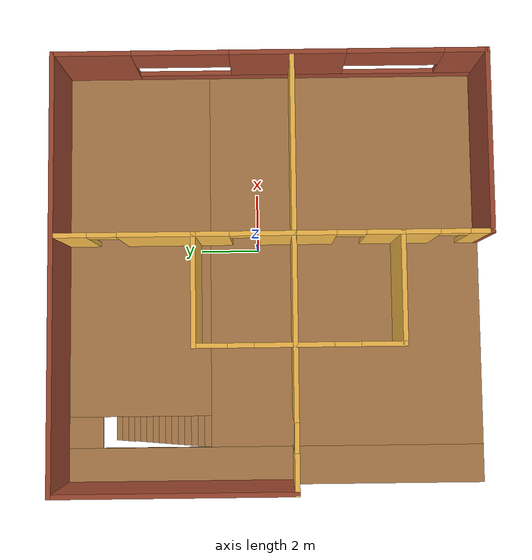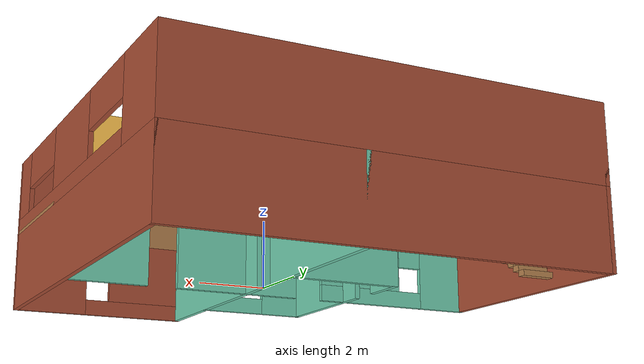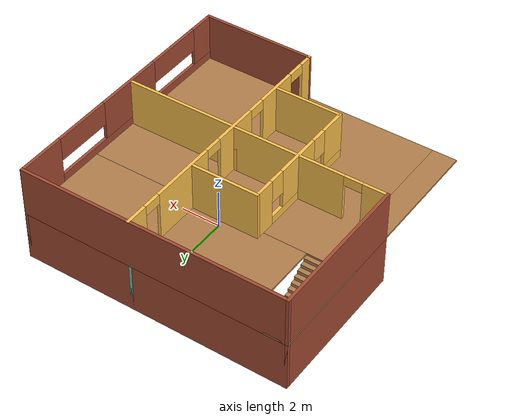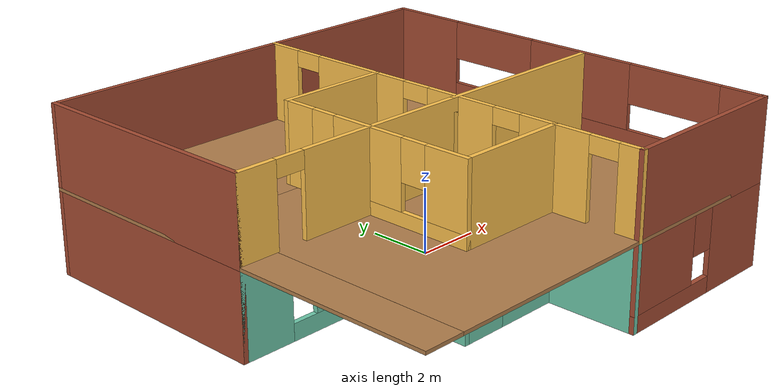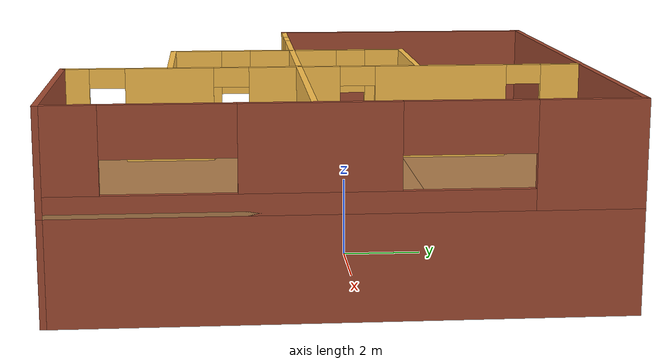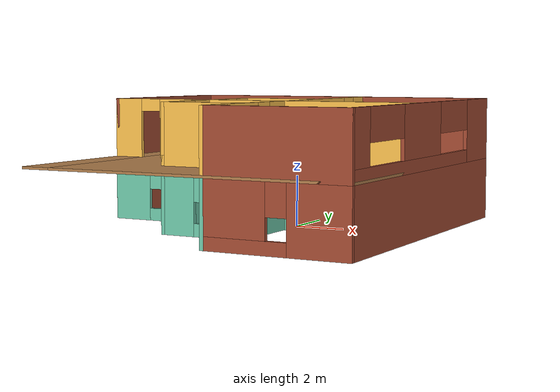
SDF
<?xml version='1.0'?>
<sdf version='1.6'>
  <model name='myhouse'>
    <pose frame=''>-1.06744 -0.491772 0 0 -0 0</pose>
    <link name='Floor_0'>
      <pose frame=''>0 0 2.5 0 -0 0</pose>
      <visual name='Floor_0_Visual_0'>
        <pose frame=''>-6.14496 0 0.05 0 -0 0</pose>
        <geometry>
          <box>
            <size>1.21009 13.5 0.1</size>
          </box>
        </geometry>
        <material>
          <script>
            <uri>file://media/materials/scripts/gazebo.material</uri>
            <name>Gazebo/Wood</name>
          </script>
          <ambient>1 0.764706 0.305882 1</ambient>
        </material>
        <meta>
          <layer>1</layer>
        </meta>
      </visual>
      <collision name='Floor_0_Collision_0'>
        <geometry>
          <box>
            <size>1.21009 13.5 0.1</size>
          </box>
        </geometry>
        <pose frame=''>-6.14496 0 0.05 0 -0 0</pose>
      </collision>
      <visual name='Floor_0_Visual_1'>
        <pose frame=''>0.605042 -2.36825 0.05 0 -0 0</pose>
        <geometry>
          <box>
            <size>12.2899 8.76351 0.1</size>
          </box>
        </geometry>
        <material>
          <script>
            <uri>file://media/materials/scripts/gazebo.material</uri>
            <name>Gazebo/Wood</name>
          </script>
          <ambient>1 0.764706 0.305882 1</ambient>
        </material>
        <meta>
          <layer>1</layer>
        </meta>
      </visual>
      <collision name='Floor_0_Collision_1'>
        <geometry>
          <box>
            <size>12.2899 8.76351 0.1</size>
          </box>
        </geometry>
        <pose frame=''>0.605042 -2.36825 0.05 0 -0 0</pose>
      </collision>
      <visual name='Floor_0_Visual_2'>
        <pose frame=''>1.10504 4.38175 0.05 0 -0 0</pose>
        <geometry>
          <box>
            <size>11.2899 4.73649 0.1</size>
          </box>
        </geometry>
        <material>
          <script>
            <uri>file://media/materials/scripts/gazebo.material</uri>
            <name>Gazebo/Wood</name>
          </script>
          <ambient>1 0.764706 0.305882 1</ambient>
        </material>
        <meta>
          <layer>1</layer>
        </meta>
      </visual>
      <collision name='Floor_0_Collision_2'>
        <geometry>
          <box>
            <size>11.2899 4.73649 0.1</size>
          </box>
        </geometry>
        <pose frame=''>1.10504 4.38175 0.05 0 -0 0</pose>
      </collision>
      <visual name='Floor_0_Visual_3'>
        <pose frame=''>-5.03991 6.13175 0.05 0 -0 0</pose>
        <geometry>
          <box>
            <size>1 1.23649 0.1</size>
          </box>
        </geometry>
        <material>
          <script>
            <uri>file://media/materials/scripts/gazebo.material</uri>
            <name>Gazebo/Wood</name>
          </script>
          <ambient>1 0.764706 0.305882 1</ambient>
        </material>
        <meta>
          <layer>1</layer>
        </meta>
      </visual>
      <collision name='Floor_0_Collision_3'>
        <geometry>
          <box>
            <size>1 1.23649 0.1</size>
          </box>
        </geometry>
        <pose frame=''>-5.03991 6.13175 0.05 0 -0 0</pose>
      </collision>
    </link>
    <link name='Stairs_0'>
      <visual name='Stairs_0_Visual_0'>
        <pose frame=''>-5.03992 5.39684 0.083333 0 -0 0</pose>
        <geometry>
          <box>
            <size>1 0.233333 0.166667</size>
          </box>
        </geometry>
        <material>
          <script>
            <uri>file://media/materials/scripts/gazebo.material</uri>
            <name>Gazebo/Wood</name>
          </script>
          <ambient>1 1 1 1</ambient>
        </material>
        <meta>
          <layer>0</layer>
        </meta>
      </visual>
      <collision name='Stairs_0_Collision_0'>
        <geometry>
          <box>
            <size>1 0.233333 0.166667</size>
          </box>
        </geometry>
        <pose frame=''>-5.03992 5.39684 0.083333 0 -0 0</pose>
      </collision>
      <visual name='Stairs_0_Visual_1'>
        <pose frame=''>-5.03992 5.16351 0.25 0 -0 0</pose>
        <geometry>
          <box>
            <size>1 0.233333 0.166667</size>
          </box>
        </geometry>
        <material>
          <script>
            <uri>file://media/materials/scripts/gazebo.material</uri>
            <name>Gazebo/Wood</name>
          </script>
          <ambient>1 1 1 1</ambient>
        </material>
        <meta>
          <layer>0</layer>
        </meta>
      </visual>
      <collision name='Stairs_0_Collision_1'>
        <geometry>
          <box>
            <size>1 0.233333 0.166667</size>
          </box>
        </geometry>
        <pose frame=''>-5.03992 5.16351 0.25 0 -0 0</pose>
      </collision>
      <visual name='Stairs_0_Visual_2'>
        <pose frame=''>-5.03992 4.93017 0.416667 0 -0 0</pose>
        <geometry>
          <box>
            <size>1 0.233333 0.166667</size>
          </box>
        </geometry>
        <material>
          <script>
            <uri>file://media/materials/scripts/gazebo.material</uri>
            <name>Gazebo/Wood</name>
          </script>
          <ambient>1 1 1 1</ambient>
        </material>
        <meta>
          <layer>0</layer>
        </meta>
      </visual>
      <collision name='Stairs_0_Collision_2'>
        <geometry>
          <box>
            <size>1 0.233333 0.166667</size>
          </box>
        </geometry>
        <pose frame=''>-5.03992 4.93017 0.416667 0 -0 0</pose>
      </collision>
      <visual name='Stairs_0_Visual_3'>
        <pose frame=''>-5.03992 4.69684 0.583333 0 -0 0</pose>
        <geometry>
          <box>
            <size>1 0.233333 0.166667</size>
          </box>
        </geometry>
        <material>
          <script>
            <uri>file://media/materials/scripts/gazebo.material</uri>
            <name>Gazebo/Wood</name>
          </script>
          <ambient>1 1 1 1</ambient>
        </material>
        <meta>
          <layer>0</layer>
        </meta>
      </visual>
      <collision name='Stairs_0_Collision_3'>
        <geometry>
          <box>
            <size>1 0.233333 0.166667</size>
          </box>
        </geometry>
        <pose frame=''>-5.03992 4.69684 0.583333 0 -0 0</pose>
      </collision>
      <visual name='Stairs_0_Visual_4'>
        <pose frame=''>-5.03992 4.46351 0.75 0 -0 0</pose>
        <geometry>
          <box>
            <size>1 0.233333 0.166667</size>
          </box>
        </geometry>
        <material>
          <script>
            <uri>file://media/materials/scripts/gazebo.material</uri>
            <name>Gazebo/Wood</name>
          </script>
          <ambient>1 1 1 1</ambient>
        </material>
        <meta>
          <layer>0</layer>
        </meta>
      </visual>
      <collision name='Stairs_0_Collision_4'>
        <geometry>
          <box>
            <size>1 0.233333 0.166667</size>
          </box>
        </geometry>
        <pose frame=''>-5.03992 4.46351 0.75 0 -0 0</pose>
      </collision>
      <visual name='Stairs_0_Visual_5'>
        <pose frame=''>-5.03992 4.23017 0.916667 0 -0 0</pose>
        <geometry>
          <box>
            <size>1 0.233333 0.166667</size>
          </box>
        </geometry>
        <material>
          <script>
            <uri>file://media/materials/scripts/gazebo.material</uri>
            <name>Gazebo/Wood</name>
          </script>
          <ambient>1 1 1 1</ambient>
        </material>
        <meta>
          <layer>0</layer>
        </meta>
      </visual>
      <collision name='Stairs_0_Collision_5'>
        <geometry>
          <box>
            <size>1 0.233333 0.166667</size>
          </box>
        </geometry>
        <pose frame=''>-5.03992 4.23017 0.916667 0 -0 0</pose>
      </collision>
      <visual name='Stairs_0_Visual_6'>
        <pose frame=''>-5.03992 3.99684 1.08333 0 -0 0</pose>
        <geometry>
          <box>
            <size>1 0.233333 0.166667</size>
          </box>
        </geometry>
        <material>
          <script>
            <uri>file://media/materials/scripts/gazebo.material</uri>
            <name>Gazebo/Wood</name>
          </script>
          <ambient>1 1 1 1</ambient>
        </material>
        <meta>
          <layer>0</layer>
        </meta>
      </visual>
      <collision name='Stairs_0_Collision_6'>
        <geometry>
          <box>
            <size>1 0.233333 0.166667</size>
          </box>
        </geometry>
        <pose frame=''>-5.03992 3.99684 1.08333 0 -0 0</pose>
      </collision>
      <visual name='Stairs_0_Visual_7'>
        <pose frame=''>-5.03992 3.76351 1.25 0 -0 0</pose>
        <geometry>
          <box>
            <size>1 0.233333 0.166667</size>
          </box>
        </geometry>
        <material>
          <script>
            <uri>file://media/materials/scripts/gazebo.material</uri>
            <name>Gazebo/Wood</name>
          </script>
          <ambient>1 1 1 1</ambient>
        </material>
        <meta>
          <layer>0</layer>
        </meta>
      </visual>
      <collision name='Stairs_0_Collision_7'>
        <geometry>
          <box>
            <size>1 0.233333 0.166667</size>
          </box>
        </geometry>
        <pose frame=''>-5.03992 3.76351 1.25 0 -0 0</pose>
      </collision>
      <visual name='Stairs_0_Visual_8'>
        <pose frame=''>-5.03992 3.53017 1.41667 0 -0 0</pose>
        <geometry>
          <box>
            <size>1 0.233333 0.166667</size>
          </box>
        </geometry>
        <material>
          <script>
            <uri>file://media/materials/scripts/gazebo.material</uri>
            <name>Gazebo/Wood</name>
          </script>
          <ambient>1 1 1 1</ambient>
        </material>
        <meta>
          <layer>0</layer>
        </meta>
      </visual>
      <collision name='Stairs_0_Collision_8'>
        <geometry>
          <box>
            <size>1 0.233333 0.166667</size>
          </box>
        </geometry>
        <pose frame=''>-5.03992 3.53017 1.41667 0 -0 0</pose>
      </collision>
      <visual name='Stairs_0_Visual_9'>
        <pose frame=''>-5.03992 3.29684 1.58333 0 -0 0</pose>
        <geometry>
          <box>
            <size>1 0.233333 0.166667</size>
          </box>
        </geometry>
        <material>
          <script>
            <uri>file://media/materials/scripts/gazebo.material</uri>
            <name>Gazebo/Wood</name>
          </script>
          <ambient>1 1 1 1</ambient>
        </material>
        <meta>
          <layer>0</layer>
        </meta>
      </visual>
      <collision name='Stairs_0_Collision_9'>
        <geometry>
          <box>
            <size>1 0.233333 0.166667</size>
          </box>
        </geometry>
        <pose frame=''>-5.03992 3.29684 1.58333 0 -0 0</pose>
      </collision>
      <visual name='Stairs_0_Visual_10'>
        <pose frame=''>-5.03992 3.06351 1.75 0 -0 0</pose>
        <geometry>
          <box>
            <size>1 0.233333 0.166667</size>
          </box>
        </geometry>
        <material>
          <script>
            <uri>file://media/materials/scripts/gazebo.material</uri>
            <name>Gazebo/Wood</name>
          </script>
          <ambient>1 1 1 1</ambient>
        </material>
        <meta>
          <layer>0</layer>
        </meta>
      </visual>
      <collision name='Stairs_0_Collision_10'>
        <geometry>
          <box>
            <size>1 0.233333 0.166667</size>
          </box>
        </geometry>
        <pose frame=''>-5.03992 3.06351 1.75 0 -0 0</pose>
      </collision>
      <visual name='Stairs_0_Visual_11'>
        <pose frame=''>-5.03992 2.83017 1.91667 0 -0 0</pose>
        <geometry>
          <box>
            <size>1 0.233333 0.166667</size>
          </box>
        </geometry>
        <material>
          <script>
            <uri>file://media/materials/scripts/gazebo.material</uri>
            <name>Gazebo/Wood</name>
          </script>
          <ambient>1 1 1 1</ambient>
        </material>
        <meta>
          <layer>0</layer>
        </meta>
      </visual>
      <collision name='Stairs_0_Collision_11'>
        <geometry>
          <box>
            <size>1 0.233333 0.166667</size>
          </box>
        </geometry>
        <pose frame=''>-5.03992 2.83017 1.91667 0 -0 0</pose>
      </collision>
      <visual name='Stairs_0_Visual_12'>
        <pose frame=''>-5.03992 2.59684 2.08333 0 -0 0</pose>
        <geometry>
          <box>
            <size>1 0.233333 0.166667</size>
          </box>
        </geometry>
        <material>
          <script>
            <uri>file://media/materials/scripts/gazebo.material</uri>
            <name>Gazebo/Wood</name>
          </script>
          <ambient>1 1 1 1</ambient>
        </material>
        <meta>
          <layer>0</layer>
        </meta>
      </visual>
      <collision name='Stairs_0_Collision_12'>
        <geometry>
          <box>
            <size>1 0.233333 0.166667</size>
          </box>
        </geometry>
        <pose frame=''>-5.03992 2.59684 2.08333 0 -0 0</pose>
      </collision>
      <visual name='Stairs_0_Visual_13'>
        <pose frame=''>-5.03992 2.36351 2.25 0 -0 0</pose>
        <geometry>
          <box>
            <size>1 0.233333 0.166667</size>
          </box>
        </geometry>
        <material>
          <script>
            <uri>file://media/materials/scripts/gazebo.material</uri>
            <name>Gazebo/Wood</name>
          </script>
          <ambient>1 1 1 1</ambient>
        </material>
        <meta>
          <layer>0</layer>
        </meta>
      </visual>
      <collision name='Stairs_0_Collision_13'>
        <geometry>
          <box>
            <size>1 0.233333 0.166667</size>
          </box>
        </geometry>
        <pose frame=''>-5.03992 2.36351 2.25 0 -0 0</pose>
      </collision>
      <visual name='Stairs_0_Visual_14'>
        <pose frame=''>-5.03992 2.13017 2.41667 0 -0 0</pose>
        <geometry>
          <box>
            <size>1 0.233333 0.166667</size>
          </box>
        </geometry>
        <material>
          <script>
            <uri>file://media/materials/scripts/gazebo.material</uri>
            <name>Gazebo/Wood</name>
          </script>
          <ambient>1 1 1 1</ambient>
        </material>
        <meta>
          <layer>0</layer>
        </meta>
      </visual>
      <collision name='Stairs_0_Collision_14'>
        <geometry>
          <box>
            <size>1 0.233333 0.166667</size>
          </box>
        </geometry>
        <pose frame=''>-5.03992 2.13017 2.41667 0 -0 0</pose>
      </collision>
    </link>
    <link name='Wall_0'>
      <collision name='Wall_0_Collision'>
        <geometry>
          <box>
            <size>13.5 0.15 2.5</size>
          </box>
        </geometry>
        <pose frame=''>0 0 1.25 0 -0 0</pose>
      </collision>
      <visual name='Wall_0_Visual'>
        <pose frame=''>0 0 1.25 0 -0 0</pose>
        <geometry>
          <box>
            <size>13.5 0.15 2.5</size>
          </box>
        </geometry>
        <material>
          <script>
            <uri>file://media/materials/scripts/gazebo.material</uri>
            <name>Gazebo/Bricks</name>
          </script>
          <ambient>1 1 1 1</ambient>
        </material>
        <meta>
          <layer>0</layer>
        </meta>
      </visual>
      <pose frame=''>0 6.675 0 0 -0 0</pose>
    </link>
    <link name='Wall_1'>
      <collision name='Wall_1_Collision'>
        <geometry>
          <box>
            <size>13.5 0.15 2.5</size>
          </box>
        </geometry>
        <pose frame=''>0 0 1.25 0 -0 0</pose>
      </collision>
      <visual name='Wall_1_Visual'>
        <pose frame=''>0 0 1.25 0 -0 0</pose>
        <geometry>
          <box>
            <size>13.5 0.15 2.5</size>
          </box>
        </geometry>
        <material>
          <script>
            <uri>file://media/materials/scripts/gazebo.material</uri>
            <name>Gazebo/Bricks</name>
          </script>
          <ambient>1 1 1 1</ambient>
        </material>
        <meta>
          <layer>0</layer>
        </meta>
      </visual>
      <pose frame=''>6.675 0 0 0 0 -1.5708</pose>
    </link>
    <link name='Wall_10'>
      <pose frame=''>-0.61 -3.965 0 0 -0 0</pose>
      <visual name='Wall_10_Visual_0'>
        <pose frame=''>-1.03021 0 1.25 0 -0 0</pose>
        <geometry>
          <box>
            <size>1.43958 0.15 2.5</size>
          </box>
        </geometry>
        <material>
          <script>
            <uri>file://media/materials/scripts/gazebo.material</uri>
            <name>Gazebo/Grey</name>
          </script>
          <ambient>0.435294 0.796078 0.67451 1</ambient>
        </material>
        <meta>
          <layer>0</layer>
        </meta>
      </visual>
      <collision name='Wall_10_Collision_0'>
        <geometry>
          <box>
            <size>1.43958 0.15 2.5</size>
          </box>
        </geometry>
        <pose frame=''>-1.03021 0 1.25 0 -0 0</pose>
      </collision>
      <visual name='Wall_10_Visual_1'>
        <pose frame=''>0.719792 0 0.25 0 -0 0</pose>
        <geometry>
          <box>
            <size>2.06041 0.15 0.5</size>
          </box>
        </geometry>
        <material>
          <script>
            <uri>file://media/materials/scripts/gazebo.material</uri>
            <name>Gazebo/Grey</name>
          </script>
          <ambient>0.435294 0.796078 0.67451 1</ambient>
        </material>
        <meta>
          <layer>0</layer>
        </meta>
      </visual>
      <collision name='Wall_10_Collision_1'>
        <geometry>
          <box>
            <size>2.06041 0.15 0.5</size>
          </box>
        </geometry>
        <pose frame=''>0.719792 0 0.25 0 -0 0</pose>
      </collision>
      <visual name='Wall_10_Visual_2'>
        <pose frame=''>1.11979 0 1.5 0 -0 0</pose>
        <geometry>
          <box>
            <size>1.26042 0.15 2</size>
          </box>
        </geometry>
        <material>
          <script>
            <uri>file://media/materials/scripts/gazebo.material</uri>
            <name>Gazebo/Grey</name>
          </script>
          <ambient>0.435294 0.796078 0.67451 1</ambient>
        </material>
        <meta>
          <layer>0</layer>
        </meta>
      </visual>
      <collision name='Wall_10_Collision_2'>
        <geometry>
          <box>
            <size>1.26042 0.15 2</size>
          </box>
        </geometry>
        <pose frame=''>1.11979 0 1.5 0 -0 0</pose>
      </collision>
      <visual name='Wall_10_Visual_3'>
        <pose frame=''>0.089585 0 1.9 0 -0 0</pose>
        <geometry>
          <box>
            <size>0.8 0.15 1.2</size>
          </box>
        </geometry>
        <material>
          <script>
            <uri>file://media/materials/scripts/gazebo.material</uri>
            <name>Gazebo/Grey</name>
          </script>
          <ambient>0.435294 0.796078 0.67451 1</ambient>
        </material>
        <meta>
          <layer>0</layer>
        </meta>
      </visual>
      <collision name='Wall_10_Collision_3'>
        <geometry>
          <box>
            <size>0.8 0.15 1.2</size>
          </box>
        </geometry>
        <pose frame=''>0.089585 0 1.9 0 -0 0</pose>
      </collision>
    </link>
    <link name='Wall_12'>
      <pose frame=''>3.725 -0.675 0 0 -0 0</pose>
      <visual name='Wall_12_Visual_0'>
        <pose frame=''>-1.62737 0 1.25 0 -0 0</pose>
        <geometry>
          <box>
            <size>2.49526 0.15 2.5</size>
          </box>
        </geometry>
        <material>
          <script>
            <uri>file://media/materials/scripts/gazebo.material</uri>
            <name>Gazebo/Grey</name>
          </script>
          <ambient>0.435294 0.796078 0.67451 1</ambient>
        </material>
        <meta>
          <layer>0</layer>
        </meta>
      </visual>
      <collision name='Wall_12_Collision_0'>
        <geometry>
          <box>
            <size>2.49526 0.15 2.5</size>
          </box>
        </geometry>
        <pose frame=''>-1.62737 0 1.25 0 -0 0</pose>
      </collision>
      <visual name='Wall_12_Visual_1'>
        <pose frame=''>1.69763 0 1.25 0 -0 0</pose>
        <geometry>
          <box>
            <size>2.35474 0.15 2.5</size>
          </box>
        </geometry>
        <material>
          <script>
            <uri>file://media/materials/scripts/gazebo.material</uri>
            <name>Gazebo/Grey</name>
          </script>
          <ambient>0.435294 0.796078 0.67451 1</ambient>
        </material>
        <meta>
          <layer>0</layer>
        </meta>
      </visual>
      <collision name='Wall_12_Collision_1'>
        <geometry>
          <box>
            <size>2.35474 0.15 2.5</size>
          </box>
        </geometry>
        <pose frame=''>1.69763 0 1.25 0 -0 0</pose>
      </collision>
      <visual name='Wall_12_Visual_2'>
        <pose frame=''>0.070263 0 2.25 0 -0 0</pose>
        <geometry>
          <box>
            <size>0.9 0.15 0.5</size>
          </box>
        </geometry>
        <material>
          <script>
            <uri>file://media/materials/scripts/gazebo.material</uri>
            <name>Gazebo/Grey</name>
          </script>
          <ambient>0.435294 0.796078 0.67451 1</ambient>
        </material>
        <meta>
          <layer>0</layer>
        </meta>
      </visual>
      <collision name='Wall_12_Collision_2'>
        <geometry>
          <box>
            <size>0.9 0.15 0.5</size>
          </box>
        </geometry>
        <pose frame=''>0.070263 0 2.25 0 -0 0</pose>
      </collision>
    </link>
    <link name='Wall_14'>
      <collision name='Wall_14_Collision'>
        <geometry>
          <box>
            <size>13.5 0.15 2.5</size>
          </box>
        </geometry>
        <pose frame=''>0 0 1.25 0 -0 0</pose>
      </collision>
      <visual name='Wall_14_Visual'>
        <pose frame=''>0 0 1.25 0 -0 0</pose>
        <geometry>
          <box>
            <size>13.5 0.15 2.5</size>
          </box>
        </geometry>
        <material>
          <script>
            <uri>file://media/materials/scripts/gazebo.material</uri>
            <name>Gazebo/Bricks</name>
          </script>
          <ambient>1 1 1 1</ambient>
        </material>
        <meta>
          <layer>1</layer>
        </meta>
      </visual>
      <pose frame=''>0 6.675 2.5 0 -0 0</pose>
    </link>
    <link name='Wall_15'>
      <pose frame=''>6.675 0 2.5 0 0 -1.5708</pose>
      <visual name='Wall_15_Visual_0'>
        <pose frame=''>-5.5065 0 1.25 0 -0 0</pose>
        <geometry>
          <box>
            <size>2.48699 0.15 2.5</size>
          </box>
        </geometry>
        <material>
          <script>
            <uri>file://media/materials/scripts/gazebo.material</uri>
            <name>Gazebo/Bricks</name>
          </script>
          <ambient>1 1 1 1</ambient>
        </material>
        <meta>
          <layer>1</layer>
        </meta>
      </visual>
      <collision name='Wall_15_Collision_0'>
        <geometry>
          <box>
            <size>2.48699 0.15 2.5</size>
          </box>
        </geometry>
        <pose frame=''>-5.5065 0 1.25 0 -0 0</pose>
      </collision>
      <visual name='Wall_15_Visual_1'>
        <pose frame=''>1.2435 0 0.25 0 -0 0</pose>
        <geometry>
          <box>
            <size>11.013 0.15 0.5</size>
          </box>
        </geometry>
        <material>
          <script>
            <uri>file://media/materials/scripts/gazebo.material</uri>
            <name>Gazebo/Bricks</name>
          </script>
          <ambient>1 1 1 1</ambient>
        </material>
        <meta>
          <layer>1</layer>
        </meta>
      </visual>
      <collision name='Wall_15_Collision_1'>
        <geometry>
          <box>
            <size>11.013 0.15 0.5</size>
          </box>
        </geometry>
        <pose frame=''>1.2435 0 0.25 0 -0 0</pose>
      </collision>
      <visual name='Wall_15_Visual_2'>
        <pose frame=''>0.548993 0 1.5 0 -0 0</pose>
        <geometry>
          <box>
            <size>3.624 0.15 2</size>
          </box>
        </geometry>
        <material>
          <script>
            <uri>file://media/materials/scripts/gazebo.material</uri>
            <name>Gazebo/Bricks</name>
          </script>
          <ambient>1 1 1 1</ambient>
        </material>
        <meta>
          <layer>1</layer>
        </meta>
      </visual>
      <collision name='Wall_15_Collision_2'>
        <geometry>
          <box>
            <size>3.624 0.15 2</size>
          </box>
        </geometry>
        <pose frame=''>0.548993 0 1.5 0 -0 0</pose>
      </collision>
      <visual name='Wall_15_Visual_3'>
        <pose frame=''>6.0555 0 1.5 0 -0 0</pose>
        <geometry>
          <box>
            <size>1.38901 0.15 2</size>
          </box>
        </geometry>
        <material>
          <script>
            <uri>file://media/materials/scripts/gazebo.material</uri>
            <name>Gazebo/Bricks</name>
          </script>
          <ambient>1 1 1 1</ambient>
        </material>
        <meta>
          <layer>1</layer>
        </meta>
      </visual>
      <collision name='Wall_15_Collision_3'>
        <geometry>
          <box>
            <size>1.38901 0.15 2</size>
          </box>
        </geometry>
        <pose frame=''>6.0555 0 1.5 0 -0 0</pose>
      </collision>
      <visual name='Wall_15_Visual_4'>
        <pose frame=''>-2.76301 0 1.9 0 -0 0</pose>
        <geometry>
          <box>
            <size>3 0.15 1.2</size>
          </box>
        </geometry>
        <material>
          <script>
            <uri>file://media/materials/scripts/gazebo.material</uri>
            <name>Gazebo/Bricks</name>
          </script>
          <ambient>1 1 1 1</ambient>
        </material>
        <meta>
          <layer>1</layer>
        </meta>
      </visual>
      <collision name='Wall_15_Collision_4'>
        <geometry>
          <box>
            <size>3 0.15 1.2</size>
          </box>
        </geometry>
        <pose frame=''>-2.76301 0 1.9 0 -0 0</pose>
      </collision>
      <visual name='Wall_15_Visual_5'>
        <pose frame=''>3.86099 0 1.9 0 -0 0</pose>
        <geometry>
          <box>
            <size>3 0.15 1.2</size>
          </box>
        </geometry>
        <material>
          <script>
            <uri>file://media/materials/scripts/gazebo.material</uri>
            <name>Gazebo/Bricks</name>
          </script>
          <ambient>1 1 1 1</ambient>
        </material>
        <meta>
          <layer>1</layer>
        </meta>
      </visual>
      <collision name='Wall_15_Collision_5'>
        <geometry>
          <box>
            <size>3 0.15 1.2</size>
          </box>
        </geometry>
        <pose frame=''>3.86099 0 1.9 0 -0 0</pose>
      </collision>
    </link>
    <link name='Wall_16'>
      <collision name='Wall_16_Collision'>
        <geometry>
          <box>
            <size>5.75 0.15 2.5</size>
          </box>
        </geometry>
        <pose frame=''>0 0 1.25 0 -0 0</pose>
      </collision>
      <visual name='Wall_16_Visual'>
        <pose frame=''>0 0 1.25 0 -0 0</pose>
        <geometry>
          <box>
            <size>5.75 0.15 2.5</size>
          </box>
        </geometry>
        <material>
          <script>
            <uri>file://media/materials/scripts/gazebo.material</uri>
            <name>Gazebo/Bricks</name>
          </script>
          <ambient>1 1 1 1</ambient>
        </material>
        <meta>
          <layer>1</layer>
        </meta>
      </visual>
      <pose frame=''>3.875 -6.675 2.5 0 -0 3.14159</pose>
    </link>
    <link name='Wall_17'>
      <pose frame=''>1.075 0 2.5 0 -0 1.5708</pose>
      <visual name='Wall_17_Visual_0'>
        <pose frame=''>-6.37575 0 1.25 0 -0 0</pose>
        <geometry>
          <box>
            <size>0.748508 0.15 2.5</size>
          </box>
        </geometry>
        <material>
          <script>
            <uri>file://media/materials/scripts/gazebo.material</uri>
            <name>Gazebo/Grey</name>
          </script>
          <ambient>1 0.764706 0.305882 1</ambient>
        </material>
        <meta>
          <layer>1</layer>
        </meta>
      </visual>
      <collision name='Wall_17_Collision_0'>
        <geometry>
          <box>
            <size>0.748508 0.15 2.5</size>
          </box>
        </geometry>
        <pose frame=''>-6.37575 0 1.25 0 -0 0</pose>
      </collision>
      <visual name='Wall_17_Visual_1'>
        <pose frame=''>-3.98174 0 1.25 0 -0 0</pose>
        <geometry>
          <box>
            <size>2.2395 0.15 2.5</size>
          </box>
        </geometry>
        <material>
          <script>
            <uri>file://media/materials/scripts/gazebo.material</uri>
            <name>Gazebo/Grey</name>
          </script>
          <ambient>1 0.764706 0.305882 1</ambient>
        </material>
        <meta>
          <layer>1</layer>
        </meta>
      </visual>
      <collision name='Wall_17_Collision_1'>
        <geometry>
          <box>
            <size>2.2395 0.15 2.5</size>
          </box>
        </geometry>
        <pose frame=''>-3.98174 0 1.25 0 -0 0</pose>
      </collision>
      <visual name='Wall_17_Visual_2'>
        <pose frame=''>-0.790493 0 1.25 0 -0 0</pose>
        <geometry>
          <box>
            <size>2.343 0.15 2.5</size>
          </box>
        </geometry>
        <material>
          <script>
            <uri>file://media/materials/scripts/gazebo.material</uri>
            <name>Gazebo/Grey</name>
          </script>
          <ambient>1 0.764706 0.305882 1</ambient>
        </material>
        <meta>
          <layer>1</layer>
        </meta>
      </visual>
      <collision name='Wall_17_Collision_2'>
        <geometry>
          <box>
            <size>2.343 0.15 2.5</size>
          </box>
        </geometry>
        <pose frame=''>-0.790493 0 1.25 0 -0 0</pose>
      </collision>
      <visual name='Wall_17_Visual_3'>
        <pose frame=''>2.98726 0 1.25 0 -0 0</pose>
        <geometry>
          <box>
            <size>3.4125 0.15 2.5</size>
          </box>
        </geometry>
        <material>
          <script>
            <uri>file://media/materials/scripts/gazebo.material</uri>
            <name>Gazebo/Grey</name>
          </script>
          <ambient>1 0.764706 0.305882 1</ambient>
        </material>
        <meta>
          <layer>1</layer>
        </meta>
      </visual>
      <collision name='Wall_17_Collision_3'>
        <geometry>
          <box>
            <size>3.4125 0.15 2.5</size>
          </box>
        </geometry>
        <pose frame=''>2.98726 0 1.25 0 -0 0</pose>
      </collision>
      <visual name='Wall_17_Visual_4'>
        <pose frame=''>6.17175 0 1.25 0 -0 0</pose>
        <geometry>
          <box>
            <size>1.15649 0.15 2.5</size>
          </box>
        </geometry>
        <material>
          <script>
            <uri>file://media/materials/scripts/gazebo.material</uri>
            <name>Gazebo/Grey</name>
          </script>
          <ambient>1 0.764706 0.305882 1</ambient>
        </material>
        <meta>
          <layer>1</layer>
        </meta>
      </visual>
      <collision name='Wall_17_Collision_4'>
        <geometry>
          <box>
            <size>1.15649 0.15 2.5</size>
          </box>
        </geometry>
        <pose frame=''>6.17175 0 1.25 0 -0 0</pose>
      </collision>
      <visual name='Wall_17_Visual_5'>
        <pose frame=''>-5.55149 0 2.25 0 -0 0</pose>
        <geometry>
          <box>
            <size>0.9 0.15 0.5</size>
          </box>
        </geometry>
        <material>
          <script>
            <uri>file://media/materials/scripts/gazebo.material</uri>
            <name>Gazebo/Grey</name>
          </script>
          <ambient>1 0.764706 0.305882 1</ambient>
        </material>
        <meta>
          <layer>1</layer>
        </meta>
      </visual>
      <collision name='Wall_17_Collision_5'>
        <geometry>
          <box>
            <size>0.9 0.15 0.5</size>
          </box>
        </geometry>
        <pose frame=''>-5.55149 0 2.25 0 -0 0</pose>
      </collision>
      <visual name='Wall_17_Visual_6'>
        <pose frame=''>-2.41199 0 2.25 0 -0 0</pose>
        <geometry>
          <box>
            <size>0.9 0.15 0.5</size>
          </box>
        </geometry>
        <material>
          <script>
            <uri>file://media/materials/scripts/gazebo.material</uri>
            <name>Gazebo/Grey</name>
          </script>
          <ambient>1 0.764706 0.305882 1</ambient>
        </material>
        <meta>
          <layer>1</layer>
        </meta>
      </visual>
      <collision name='Wall_17_Collision_6'>
        <geometry>
          <box>
            <size>0.9 0.15 0.5</size>
          </box>
        </geometry>
        <pose frame=''>-2.41199 0 2.25 0 -0 0</pose>
      </collision>
      <visual name='Wall_17_Visual_7'>
        <pose frame=''>0.831007 0 2.25 0 -0 0</pose>
        <geometry>
          <box>
            <size>0.9 0.15 0.5</size>
          </box>
        </geometry>
        <material>
          <script>
            <uri>file://media/materials/scripts/gazebo.material</uri>
            <name>Gazebo/Grey</name>
          </script>
          <ambient>1 0.764706 0.305882 1</ambient>
        </material>
        <meta>
          <layer>1</layer>
        </meta>
      </visual>
      <collision name='Wall_17_Collision_7'>
        <geometry>
          <box>
            <size>0.9 0.15 0.5</size>
          </box>
        </geometry>
        <pose frame=''>0.831007 0 2.25 0 -0 0</pose>
      </collision>
      <visual name='Wall_17_Visual_8'>
        <pose frame=''>5.14351 0 2.25 0 -0 0</pose>
        <geometry>
          <box>
            <size>0.9 0.15 0.5</size>
          </box>
        </geometry>
        <material>
          <script>
            <uri>file://media/materials/scripts/gazebo.material</uri>
            <name>Gazebo/Grey</name>
          </script>
          <ambient>1 0.764706 0.305882 1</ambient>
        </material>
        <meta>
          <layer>1</layer>
        </meta>
      </visual>
      <collision name='Wall_17_Collision_8'>
        <geometry>
          <box>
            <size>0.9 0.15 0.5</size>
          </box>
        </geometry>
        <pose frame=''>5.14351 0 2.25 0 -0 0</pose>
      </collision>
    </link>
    <link name='Wall_18'>
      <collision name='Wall_18_Collision'>
        <geometry>
          <box>
            <size>7.5 0.15 2.5</size>
          </box>
        </geometry>
        <pose frame=''>0 0 1.25 0 -0 0</pose>
      </collision>
      <visual name='Wall_18_Visual'>
        <pose frame=''>0 0 1.25 0 -0 0</pose>
        <geometry>
          <box>
            <size>7.5 0.15 2.5</size>
          </box>
        </geometry>
        <material>
          <script>
            <uri>file://media/materials/scripts/gazebo.material</uri>
            <name>Gazebo/Bricks</name>
          </script>
          <ambient>1 1 1 1</ambient>
        </material>
        <meta>
          <layer>1</layer>
        </meta>
      </visual>
      <pose frame=''>-6.675 3 2.5 0 0 -1.5708</pose>
    </link>
    <link name='Wall_19'>
      <pose frame=''>-2.875 -0.675 2.5 0 -0 0</pose>
      <visual name='Wall_19_Visual_0'>
        <pose frame=''>-3.24496 0 1.25 0 -0 0</pose>
        <geometry>
          <box>
            <size>1.26008 0.15 2.5</size>
          </box>
        </geometry>
        <material>
          <script>
            <uri>file://media/materials/scripts/gazebo.material</uri>
            <name>Gazebo/Grey</name>
          </script>
          <ambient>1 0.764706 0.305882 1</ambient>
        </material>
        <meta>
          <layer>1</layer>
        </meta>
      </visual>
      <collision name='Wall_19_Collision_0'>
        <geometry>
          <box>
            <size>1.26008 0.15 2.5</size>
          </box>
        </geometry>
        <pose frame=''>-3.24496 0 1.25 0 -0 0</pose>
      </collision>
      <visual name='Wall_19_Visual_1'>
        <pose frame=''>1.08004 0 1.25 0 -0 0</pose>
        <geometry>
          <box>
            <size>5.58992 0.15 2.5</size>
          </box>
        </geometry>
        <material>
          <script>
            <uri>file://media/materials/scripts/gazebo.material</uri>
            <name>Gazebo/Grey</name>
          </script>
          <ambient>1 0.764706 0.305882 1</ambient>
        </material>
        <meta>
          <layer>1</layer>
        </meta>
      </visual>
      <collision name='Wall_19_Collision_1'>
        <geometry>
          <box>
            <size>5.58992 0.15 2.5</size>
          </box>
        </geometry>
        <pose frame=''>1.08004 0 1.25 0 -0 0</pose>
      </collision>
      <visual name='Wall_19_Visual_2'>
        <pose frame=''>-2.16492 0 2.25 0 -0 0</pose>
        <geometry>
          <box>
            <size>0.9 0.15 0.5</size>
          </box>
        </geometry>
        <material>
          <script>
            <uri>file://media/materials/scripts/gazebo.material</uri>
            <name>Gazebo/Grey</name>
          </script>
          <ambient>1 0.764706 0.305882 1</ambient>
        </material>
        <meta>
          <layer>1</layer>
        </meta>
      </visual>
      <collision name='Wall_19_Collision_2'>
        <geometry>
          <box>
            <size>0.9 0.15 0.5</size>
          </box>
        </geometry>
        <pose frame=''>-2.16492 0 2.25 0 -0 0</pose>
      </collision>
    </link>
    <link name='Wall_2'>
      <pose frame=''>3.875 -6.675 0 0 -0 3.14159</pose>
      <visual name='Wall_2_Visual_0'>
        <pose frame=''>-1.68229 0 1.25 0 -0 0</pose>
        <geometry>
          <box>
            <size>2.38542 0.15 2.5</size>
          </box>
        </geometry>
        <material>
          <script>
            <uri>file://media/materials/scripts/gazebo.material</uri>
            <name>Gazebo/Bricks</name>
          </script>
          <ambient>1 1 1 1</ambient>
        </material>
        <meta>
          <layer>0</layer>
        </meta>
      </visual>
      <collision name='Wall_2_Collision_0'>
        <geometry>
          <box>
            <size>2.38542 0.15 2.5</size>
          </box>
        </geometry>
        <pose frame=''>-1.68229 0 1.25 0 -0 0</pose>
      </collision>
      <visual name='Wall_2_Visual_1'>
        <pose frame=''>1.19271 0 0.25 0 -0 0</pose>
        <geometry>
          <box>
            <size>3.36458 0.15 0.5</size>
          </box>
        </geometry>
        <material>
          <script>
            <uri>file://media/materials/scripts/gazebo.material</uri>
            <name>Gazebo/Bricks</name>
          </script>
          <ambient>1 1 1 1</ambient>
        </material>
        <meta>
          <layer>0</layer>
        </meta>
      </visual>
      <collision name='Wall_2_Collision_1'>
        <geometry>
          <box>
            <size>3.36458 0.15 0.5</size>
          </box>
        </geometry>
        <pose frame=''>1.19271 0 0.25 0 -0 0</pose>
      </collision>
      <visual name='Wall_2_Visual_2'>
        <pose frame=''>1.59271 0 1.5 0 -0 0</pose>
        <geometry>
          <box>
            <size>2.56459 0.15 2</size>
          </box>
        </geometry>
        <material>
          <script>
            <uri>file://media/materials/scripts/gazebo.material</uri>
            <name>Gazebo/Bricks</name>
          </script>
          <ambient>1 1 1 1</ambient>
        </material>
        <meta>
          <layer>0</layer>
        </meta>
      </visual>
      <collision name='Wall_2_Collision_2'>
        <geometry>
          <box>
            <size>2.56459 0.15 2</size>
          </box>
        </geometry>
        <pose frame=''>1.59271 0 1.5 0 -0 0</pose>
      </collision>
      <visual name='Wall_2_Visual_3'>
        <pose frame=''>-0.089585 0 1.9 0 -0 0</pose>
        <geometry>
          <box>
            <size>0.8 0.15 1.2</size>
          </box>
        </geometry>
        <material>
          <script>
            <uri>file://media/materials/scripts/gazebo.material</uri>
            <name>Gazebo/Bricks</name>
          </script>
          <ambient>1 1 1 1</ambient>
        </material>
        <meta>
          <layer>0</layer>
        </meta>
      </visual>
      <collision name='Wall_2_Collision_3'>
        <geometry>
          <box>
            <size>0.8 0.15 1.2</size>
          </box>
        </geometry>
        <pose frame=''>-0.089585 0 1.9 0 -0 0</pose>
      </collision>
    </link>
    <link name='Wall_20'>
      <collision name='Wall_20_Collision'>
        <geometry>
          <box>
            <size>3.5 0.15 2.5</size>
          </box>
        </geometry>
        <pose frame=''>0 0 1.25 0 -0 0</pose>
      </collision>
      <visual name='Wall_20_Visual'>
        <pose frame=''>0 0 1.25 0 -0 0</pose>
        <geometry>
          <box>
            <size>3.5 0.15 2.5</size>
          </box>
        </geometry>
        <material>
          <script>
            <uri>file://media/materials/scripts/gazebo.material</uri>
            <name>Gazebo/Grey</name>
          </script>
          <ambient>1 0.764706 0.305882 1</ambient>
        </material>
        <meta>
          <layer>1</layer>
        </meta>
      </visual>
      <pose frame=''>-0.61 2.385 2.5 0 -0 3.14159</pose>
    </link>
    <link name='Wall_21'>
      <pose frame=''>-2.285 -0.79 2.5 0 0 -1.5708</pose>
      <visual name='Wall_21_Visual_0'>
        <pose frame=''>-2.7045 0 1.25 0 -0 0</pose>
        <geometry>
          <box>
            <size>1.09099 0.15 2.5</size>
          </box>
        </geometry>
        <material>
          <script>
            <uri>file://media/materials/scripts/gazebo.material</uri>
            <name>Gazebo/Grey</name>
          </script>
          <ambient>1 0.764706 0.305882 1</ambient>
        </material>
        <meta>
          <layer>1</layer>
        </meta>
      </visual>
      <collision name='Wall_21_Collision_0'>
        <geometry>
          <box>
            <size>1.09099 0.15 2.5</size>
          </box>
        </geometry>
        <pose frame=''>-2.7045 0 1.25 0 -0 0</pose>
      </collision>
      <visual name='Wall_21_Visual_1'>
        <pose frame=''>0.545496 0 0.25 0 -0 0</pose>
        <geometry>
          <box>
            <size>5.40901 0.15 0.5</size>
          </box>
        </geometry>
        <material>
          <script>
            <uri>file://media/materials/scripts/gazebo.material</uri>
            <name>Gazebo/Grey</name>
          </script>
          <ambient>1 0.764706 0.305882 1</ambient>
        </material>
        <meta>
          <layer>1</layer>
        </meta>
      </visual>
      <collision name='Wall_21_Collision_1'>
        <geometry>
          <box>
            <size>5.40901 0.15 0.5</size>
          </box>
        </geometry>
        <pose frame=''>0.545496 0 0.25 0 -0 0</pose>
      </collision>
      <visual name='Wall_21_Visual_2'>
        <pose frame=''>-0.154757 0 1.5 0 -0 0</pose>
        <geometry>
          <box>
            <size>2.4085 0.15 2</size>
          </box>
        </geometry>
        <material>
          <script>
            <uri>file://media/materials/scripts/gazebo.material</uri>
            <name>Gazebo/Grey</name>
          </script>
          <ambient>1 0.764706 0.305882 1</ambient>
        </material>
        <meta>
          <layer>1</layer>
        </meta>
      </visual>
      <collision name='Wall_21_Collision_2'>
        <geometry>
          <box>
            <size>2.4085 0.15 2</size>
          </box>
        </geometry>
        <pose frame=''>-0.154757 0 1.5 0 -0 0</pose>
      </collision>
      <visual name='Wall_21_Visual_3'>
        <pose frame=''>2.54975 0 1.5 0 -0 0</pose>
        <geometry>
          <box>
            <size>1.40051 0.15 2</size>
          </box>
        </geometry>
        <material>
          <script>
            <uri>file://media/materials/scripts/gazebo.material</uri>
            <name>Gazebo/Grey</name>
          </script>
          <ambient>1 0.764706 0.305882 1</ambient>
        </material>
        <meta>
          <layer>1</layer>
        </meta>
      </visual>
      <collision name='Wall_21_Collision_3'>
        <geometry>
          <box>
            <size>1.40051 0.15 2</size>
          </box>
        </geometry>
        <pose frame=''>2.54975 0 1.5 0 -0 0</pose>
      </collision>
      <visual name='Wall_21_Visual_4'>
        <pose frame=''>-1.75901 0 1.9 0 -0 0</pose>
        <geometry>
          <box>
            <size>0.8 0.15 1.2</size>
          </box>
        </geometry>
        <material>
          <script>
            <uri>file://media/materials/scripts/gazebo.material</uri>
            <name>Gazebo/Grey</name>
          </script>
          <ambient>1 0.764706 0.305882 1</ambient>
        </material>
        <meta>
          <layer>1</layer>
        </meta>
      </visual>
      <collision name='Wall_21_Collision_4'>
        <geometry>
          <box>
            <size>0.8 0.15 1.2</size>
          </box>
        </geometry>
        <pose frame=''>-1.75901 0 1.9 0 -0 0</pose>
      </collision>
      <visual name='Wall_21_Visual_5'>
        <pose frame=''>1.44949 0 1.9 0 -0 0</pose>
        <geometry>
          <box>
            <size>0.8 0.15 1.2</size>
          </box>
        </geometry>
        <material>
          <script>
            <uri>file://media/materials/scripts/gazebo.material</uri>
            <name>Gazebo/Grey</name>
          </script>
          <ambient>1 0.764706 0.305882 1</ambient>
        </material>
        <meta>
          <layer>1</layer>
        </meta>
      </visual>
      <collision name='Wall_21_Collision_5'>
        <geometry>
          <box>
            <size>0.8 0.15 1.2</size>
          </box>
        </geometry>
        <pose frame=''>1.44949 0 1.9 0 -0 0</pose>
      </collision>
    </link>
    <link name='Wall_22'>
      <collision name='Wall_22_Collision'>
        <geometry>
          <box>
            <size>3.5 0.15 2.5</size>
          </box>
        </geometry>
        <pose frame=''>0 0 1.25 0 -0 0</pose>
      </collision>
      <visual name='Wall_22_Visual'>
        <pose frame=''>0 0 1.25 0 -0 0</pose>
        <geometry>
          <box>
            <size>3.5 0.15 2.5</size>
          </box>
        </geometry>
        <material>
          <script>
            <uri>file://media/materials/scripts/gazebo.material</uri>
            <name>Gazebo/Grey</name>
          </script>
          <ambient>1 0.764706 0.305882 1</ambient>
        </material>
        <meta>
          <layer>1</layer>
        </meta>
      </visual>
      <pose frame=''>-0.61 -3.965 2.5 0 -0 0</pose>
    </link>
    <link name='Wall_23'>
      <collision name='Wall_23_Collision'>
        <geometry>
          <box>
            <size>5.75 0.15 2.5</size>
          </box>
        </geometry>
        <pose frame=''>0 0 1.25 0 -0 0</pose>
      </collision>
      <visual name='Wall_23_Visual'>
        <pose frame=''>0 0 1.25 0 -0 0</pose>
        <geometry>
          <box>
            <size>5.75 0.15 2.5</size>
          </box>
        </geometry>
        <material>
          <script>
            <uri>file://media/materials/scripts/gazebo.material</uri>
            <name>Gazebo/Grey</name>
          </script>
          <ambient>1 0.764706 0.305882 1</ambient>
        </material>
        <meta>
          <layer>1</layer>
        </meta>
      </visual>
      <pose frame=''>3.725 -0.675 2.5 0 -0 0</pose>
    </link>
    <link name='Wall_3'>
      <pose frame=''>1.075 0 0 0 -0 1.5708</pose>
      <visual name='Wall_3_Visual_0'>
        <pose frame=''>-3.26258 0 1.25 0 -0 0</pose>
        <geometry>
          <box>
            <size>6.97484 0.15 2.5</size>
          </box>
        </geometry>
        <material>
          <script>
            <uri>file://media/materials/scripts/gazebo.material</uri>
            <name>Gazebo/Grey</name>
          </script>
          <ambient>0.435294 0.796078 0.67451 1</ambient>
        </material>
        <meta>
          <layer>0</layer>
        </meta>
      </visual>
      <collision name='Wall_3_Collision_0'>
        <geometry>
          <box>
            <size>6.97484 0.15 2.5</size>
          </box>
        </geometry>
        <pose frame=''>-3.26258 0 1.25 0 -0 0</pose>
      </collision>
      <visual name='Wall_3_Visual_1'>
        <pose frame=''>3.93742 0 1.25 0 -0 0</pose>
        <geometry>
          <box>
            <size>5.62516 0.15 2.5</size>
          </box>
        </geometry>
        <material>
          <script>
            <uri>file://media/materials/scripts/gazebo.material</uri>
            <name>Gazebo/Grey</name>
          </script>
          <ambient>0.435294 0.796078 0.67451 1</ambient>
        </material>
        <meta>
          <layer>0</layer>
        </meta>
      </visual>
      <collision name='Wall_3_Collision_1'>
        <geometry>
          <box>
            <size>5.62516 0.15 2.5</size>
          </box>
        </geometry>
        <pose frame=''>3.93742 0 1.25 0 -0 0</pose>
      </collision>
      <visual name='Wall_3_Visual_2'>
        <pose frame=''>0.674841 0 2.25 0 -0 0</pose>
        <geometry>
          <box>
            <size>0.9 0.15 0.5</size>
          </box>
        </geometry>
        <material>
          <script>
            <uri>file://media/materials/scripts/gazebo.material</uri>
            <name>Gazebo/Grey</name>
          </script>
          <ambient>0.435294 0.796078 0.67451 1</ambient>
        </material>
        <meta>
          <layer>0</layer>
        </meta>
      </visual>
      <collision name='Wall_3_Collision_2'>
        <geometry>
          <box>
            <size>0.9 0.15 0.5</size>
          </box>
        </geometry>
        <pose frame=''>0.674841 0 2.25 0 -0 0</pose>
      </collision>
    </link>
    <link name='Wall_5'>
      <collision name='Wall_5_Collision'>
        <geometry>
          <box>
            <size>7.5 0.15 2.5</size>
          </box>
        </geometry>
        <pose frame=''>0 0 1.25 0 -0 0</pose>
      </collision>
      <visual name='Wall_5_Visual'>
        <pose frame=''>0 0 1.25 0 -0 0</pose>
        <geometry>
          <box>
            <size>7.5 0.15 2.5</size>
          </box>
        </geometry>
        <material>
          <script>
            <uri>file://media/materials/scripts/gazebo.material</uri>
            <name>Gazebo/Bricks</name>
          </script>
          <ambient>1 1 1 1</ambient>
        </material>
        <meta>
          <layer>0</layer>
        </meta>
      </visual>
      <pose frame=''>-6.675 3 0 0 0 -1.5708</pose>
    </link>
    <link name='Wall_6'>
      <pose frame=''>-2.875 -0.675 0 0 -0 0</pose>
      <visual name='Wall_6_Visual_0'>
        <pose frame=''>-3.04759 0 1.25 0 -0 0</pose>
        <geometry>
          <box>
            <size>1.65481 0.15 2.5</size>
          </box>
        </geometry>
        <material>
          <script>
            <uri>file://media/materials/scripts/gazebo.material</uri>
            <name>Gazebo/Grey</name>
          </script>
          <ambient>0.435294 0.796078 0.67451 1</ambient>
        </material>
        <meta>
          <layer>0</layer>
        </meta>
      </visual>
      <collision name='Wall_6_Collision_0'>
        <geometry>
          <box>
            <size>1.65481 0.15 2.5</size>
          </box>
        </geometry>
        <pose frame=''>-3.04759 0 1.25 0 -0 0</pose>
      </collision>
      <visual name='Wall_6_Visual_1'>
        <pose frame=''>3.09729 0 1.25 0 -0 0</pose>
        <geometry>
          <box>
            <size>1.55541 0.15 2.5</size>
          </box>
        </geometry>
        <material>
          <script>
            <uri>file://media/materials/scripts/gazebo.material</uri>
            <name>Gazebo/Grey</name>
          </script>
          <ambient>0.435294 0.796078 0.67451 1</ambient>
        </material>
        <meta>
          <layer>0</layer>
        </meta>
      </visual>
      <collision name='Wall_6_Collision_1'>
        <geometry>
          <box>
            <size>1.55541 0.15 2.5</size>
          </box>
        </geometry>
        <pose frame=''>3.09729 0 1.25 0 -0 0</pose>
      </collision>
      <visual name='Wall_6_Visual_2'>
        <pose frame=''>-0.4003 0 0.25 0 -0 0</pose>
        <geometry>
          <box>
            <size>3.63978 0.15 0.5</size>
          </box>
        </geometry>
        <material>
          <script>
            <uri>file://media/materials/scripts/gazebo.material</uri>
            <name>Gazebo/Grey</name>
          </script>
          <ambient>0.435294 0.796078 0.67451 1</ambient>
        </material>
        <meta>
          <layer>0</layer>
        </meta>
      </visual>
      <collision name='Wall_6_Collision_2'>
        <geometry>
          <box>
            <size>3.63978 0.15 0.5</size>
          </box>
        </geometry>
        <pose frame=''>-0.4003 0 0.25 0 -0 0</pose>
      </collision>
      <visual name='Wall_6_Visual_3'>
        <pose frame=''>-0.0003 0 1.5 0 -0 0</pose>
        <geometry>
          <box>
            <size>2.83977 0.15 2</size>
          </box>
        </geometry>
        <material>
          <script>
            <uri>file://media/materials/scripts/gazebo.material</uri>
            <name>Gazebo/Grey</name>
          </script>
          <ambient>0.435294 0.796078 0.67451 1</ambient>
        </material>
        <meta>
          <layer>0</layer>
        </meta>
      </visual>
      <collision name='Wall_6_Collision_3'>
        <geometry>
          <box>
            <size>2.83977 0.15 2</size>
          </box>
        </geometry>
        <pose frame=''>-0.0003 0 1.5 0 -0 0</pose>
      </collision>
      <visual name='Wall_6_Visual_4'>
        <pose frame=''>-1.82019 0 1.9 0 -0 0</pose>
        <geometry>
          <box>
            <size>0.8 0.15 1.2</size>
          </box>
        </geometry>
        <material>
          <script>
            <uri>file://media/materials/scripts/gazebo.material</uri>
            <name>Gazebo/Grey</name>
          </script>
          <ambient>0.435294 0.796078 0.67451 1</ambient>
        </material>
        <meta>
          <layer>0</layer>
        </meta>
      </visual>
      <collision name='Wall_6_Collision_4'>
        <geometry>
          <box>
            <size>0.8 0.15 1.2</size>
          </box>
        </geometry>
        <pose frame=''>-1.82019 0 1.9 0 -0 0</pose>
      </collision>
      <visual name='Wall_6_Visual_5'>
        <pose frame=''>1.86959 0 2.25 0 -0 0</pose>
        <geometry>
          <box>
            <size>0.9 0.15 0.5</size>
          </box>
        </geometry>
        <material>
          <script>
            <uri>file://media/materials/scripts/gazebo.material</uri>
            <name>Gazebo/Grey</name>
          </script>
          <ambient>0.435294 0.796078 0.67451 1</ambient>
        </material>
        <meta>
          <layer>0</layer>
        </meta>
      </visual>
      <collision name='Wall_6_Collision_5'>
        <geometry>
          <box>
            <size>0.9 0.15 0.5</size>
          </box>
        </geometry>
        <pose frame=''>1.86959 0 2.25 0 -0 0</pose>
      </collision>
    </link>
    <link name='Wall_8'>
      <collision name='Wall_8_Collision'>
        <geometry>
          <box>
            <size>3.5 0.15 2.5</size>
          </box>
        </geometry>
        <pose frame=''>0 0 1.25 0 -0 0</pose>
      </collision>
      <visual name='Wall_8_Visual'>
        <pose frame=''>0 0 1.25 0 -0 0</pose>
        <geometry>
          <box>
            <size>3.5 0.15 2.5</size>
          </box>
        </geometry>
        <material>
          <script>
            <uri>file://media/materials/scripts/gazebo.material</uri>
            <name>Gazebo/Grey</name>
          </script>
          <ambient>0.435294 0.796078 0.67451 1</ambient>
        </material>
        <meta>
          <layer>0</layer>
        </meta>
      </visual>
      <pose frame=''>-0.61 2.385 0 0 -0 3.14159</pose>
    </link>
    <link name='Wall_9'>
      <pose frame=''>-2.285 -0.79 0 0 0 -1.5708</pose>
      <visual name='Wall_9_Visual_0'>
        <pose frame=''>-2.56258 0 1.25 0 -0 0</pose>
        <geometry>
          <box>
            <size>1.37483 0.15 2.5</size>
          </box>
        </geometry>
        <material>
          <script>
            <uri>file://media/materials/scripts/gazebo.material</uri>
            <name>Gazebo/Grey</name>
          </script>
          <ambient>0.435294 0.796078 0.67451 1</ambient>
        </material>
        <meta>
          <layer>0</layer>
        </meta>
      </visual>
      <collision name='Wall_9_Collision_0'>
        <geometry>
          <box>
            <size>1.37483 0.15 2.5</size>
          </box>
        </geometry>
        <pose frame=''>-2.56258 0 1.25 0 -0 0</pose>
      </collision>
      <visual name='Wall_9_Visual_1'>
        <pose frame=''>1.13742 0 1.25 0 -0 0</pose>
        <geometry>
          <box>
            <size>4.22517 0.15 2.5</size>
          </box>
        </geometry>
        <material>
          <script>
            <uri>file://media/materials/scripts/gazebo.material</uri>
            <name>Gazebo/Grey</name>
          </script>
          <ambient>0.435294 0.796078 0.67451 1</ambient>
        </material>
        <meta>
          <layer>0</layer>
        </meta>
      </visual>
      <collision name='Wall_9_Collision_1'>
        <geometry>
          <box>
            <size>4.22517 0.15 2.5</size>
          </box>
        </geometry>
        <pose frame=''>1.13742 0 1.25 0 -0 0</pose>
      </collision>
      <visual name='Wall_9_Visual_2'>
        <pose frame=''>-1.42517 0 2.25 0 -0 0</pose>
        <geometry>
          <box>
            <size>0.9 0.15 0.5</size>
          </box>
        </geometry>
        <material>
          <script>
            <uri>file://media/materials/scripts/gazebo.material</uri>
            <name>Gazebo/Grey</name>
          </script>
          <ambient>0.435294 0.796078 0.67451 1</ambient>
        </material>
        <meta>
          <layer>0</layer>
        </meta>
      </visual>
      <collision name='Wall_9_Collision_2'>
        <geometry>
          <box>
            <size>0.9 0.15 0.5</size>
          </box>
        </geometry>
        <pose frame=''>-1.42517 0 2.25 0 -0 0</pose>
      </collision>
    </link>
    <static>1</static>
  </model>
</sdf>
